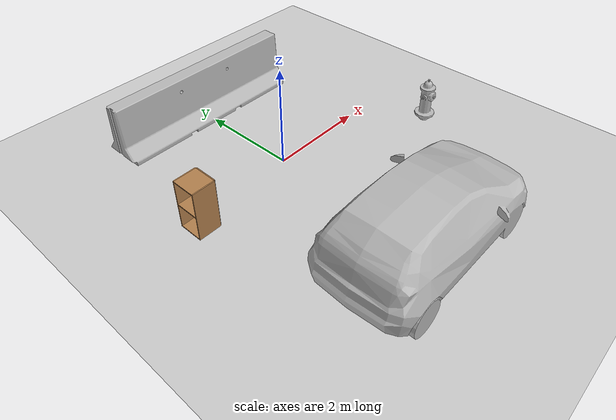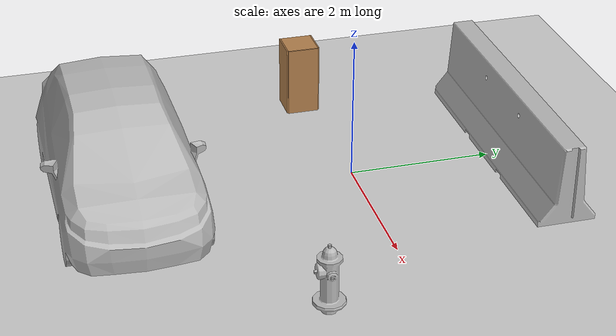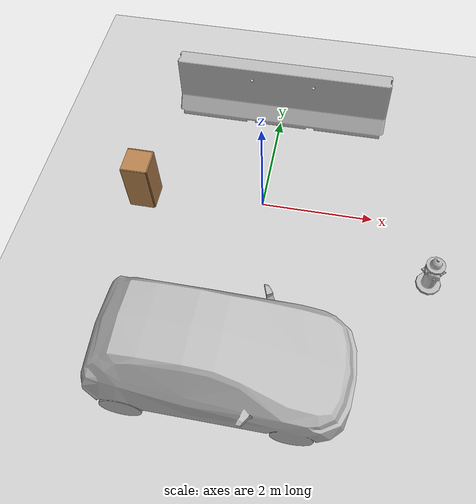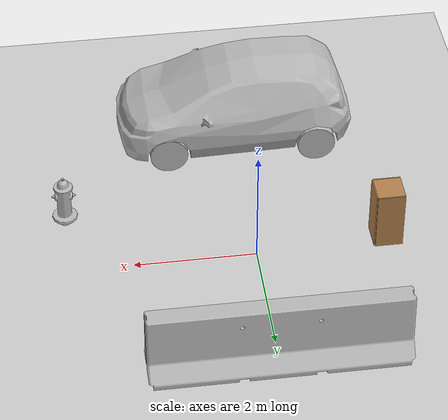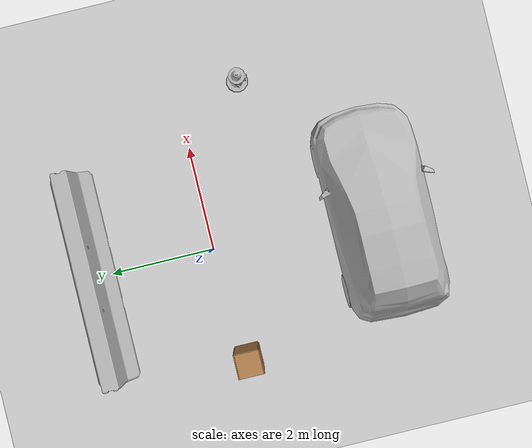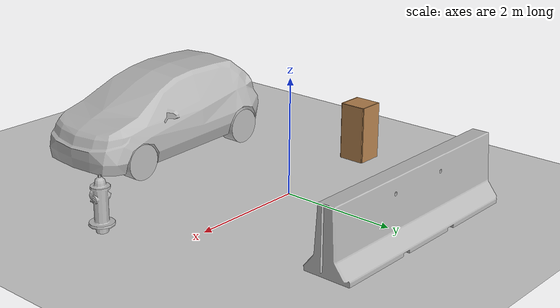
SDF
<sdf version="1.7">
 <world name="default">
  <light name="sun" type="directional">
   <pose>0 0 10 0 -0 0</pose>
   <diffuse>0.8 0.8 0.8 1</diffuse>
   <specular>0.2 0.2 0.2 1</specular>
   <attenuation>
    <range>1000</range>
    <constant>0.9</constant>
    <linear>0.01</linear>
    <quadratic>0.001</quadratic>
   </attenuation>
   <direction>-0.5 0.1 -0.9</direction>
   <spot><inner_angle>0</inner_angle><outer_angle>0</outer_angle><falloff>0</falloff></spot>
  </light>
  <model name="ground_plane">
   <static>1</static>
   <link name="link">
    <collision name="collision">
     <geometry><plane><normal>0 0 1</normal><size>100 100</size></plane></geometry>
     <surface><friction><ode><mu>100</mu><mu2>50</mu2></ode></friction></surface>
    </collision>
    <visual name="visual">
     <cast_shadows>0</cast_shadows>
     <geometry><plane><normal>0 0 1</normal><size>100 100</size></plane></geometry>
     <material>
      <script><uri>file://media/materials/scripts/gazebo.material</uri><name>Gazebo/Grey</name></script>
     </material>
    </visual>
   </link>
  </model>
  <gravity>0 0 -9.8</gravity>
  <magnetic_field>6e-06 2.3e-05 -4.2e-05</magnetic_field>
  <atmosphere type="adiabatic"/>
  <physics type="ode">
   <max_step_size>0.001</max_step_size>
   <real_time_factor>1</real_time_factor>
   <real_time_update_rate>1000</real_time_update_rate>
  </physics>
  <scene><ambient>0.4 0.4 0.4 1</ambient><background>0.7 0.7 0.7 1</background><shadows>1</shadows></scene>
  <audio><device>default</device></audio>
  <spherical_coordinates>
   <surface_model>EARTH_WGS84</surface_model>
   <latitude_deg>0</latitude_deg>
   <longitude_deg>0</longitude_deg>
   <elevation>0</elevation>
   <heading_deg>0</heading_deg>
  </spherical_coordinates>
  <model name="jersey_barrier">
   <static>1</static>
   <link name="link">
    <visual name="visual">
     <geometry><mesh><uri>model://jersey_barrier/meshes/jersey_barrier.dae</uri></mesh></geometry>
    </visual>
    <collision name="upright">
     <pose>0 0 0.5715 0 -0 0</pose>
     <geometry><box><size>4.06542 0.3063 1.143</size></box></geometry>
    </collision>
    <collision name="base">
     <pose>0 0 0.032258 0 -0 0</pose>
     <geometry><box><size>4.06542 0.8107 0.064516</size></box></geometry>
    </collision>
    <collision name="base2">
     <pose>0 0 0.1 0 -0 0</pose>
     <geometry><box><size>4.06542 0.65 0.1</size></box></geometry>
    </collision>
    <collision name="base3">
     <pose>0 0 0.2 0 -0 0</pose>
     <geometry><box><size>4.06542 0.5 0.1</size></box></geometry>
    </collision>
    <collision name="left-angle">
     <pose>0 -0.224 0.2401 0.9 -0 0</pose>
     <geometry><box><size>4.06542 0.5 0.064516</size></box></geometry>
    </collision>
    <collision name="right-angle">
     <pose>0 0.224 0.2401 -0.9 0 0</pose>
     <geometry><box><size>4.06542 0.5 0.064516</size></box></geometry>
    </collision>
   </link>
   <pose>-0.002615 2.3398 0 0 -0 0</pose>
  </model>
  <model name="hatchback">
   <static>1</static>
   <link name="link">
    <collision name="collision">
     <pose>0 0 0 0 -0 1.5708</pose>
     <geometry>
      <mesh><scale>0.0254 0.0254 0.0254</scale><uri>model://hatchback/meshes/hatchback.obj</uri></mesh>
     </geometry>
    </collision>
    <visual name="visual">
     <pose>0 0 0 0 -0 1.5708</pose>
     <geometry>
      <mesh><scale>0.0254 0.0254 0.0254</scale><uri>model://hatchback/meshes/hatchback.obj</uri></mesh>
     </geometry>
    </visual>
   </link>
   <pose>-0.37726 -3.1914 0 0 -0 0</pose>
  </model>
  <model name="fire_hydrant">
   <static>1</static>
   <link name="link">
    <collision name="collision">
     <geometry><mesh><uri>model://fire_hydrant/meshes/fire_hydrant.dae</uri></mesh></geometry>
    </collision>
    <visual name="visual">
     <geometry><mesh><uri>model://fire_hydrant/meshes/fire_hydrant.dae</uri></mesh></geometry>
    </visual>
   </link>
   <pose>3.01148 -1.19645 0 0 -0 0</pose>
  </model>
  <model name="cabinet">
   <static>1</static>
   <link name="cabinet_bottom_plate">
    <inertial>
     <pose>0 0 -1 0 -0 0</pose>
     <inertia><ixx>2.05</ixx><ixy>0</ixy><ixz>0</ixz><iyy>2.05</iyy><iyz>0</iyz><izz>2.05</izz></inertia>
     <mass>25</mass>
    </inertial>
    <collision name="cabinet_bottom_plate_geom">
     <pose>0 0 0.01 0 -0 0</pose>
     <geometry><box><size>0.45 0.45 0.02</size></box></geometry>
    </collision>
    <visual name="cabinet_bottom_plate_geom_visual">
     <pose>0 0 0.01 0 -0 0</pose>
     <geometry><box><size>0.45 0.45 0.02</size></box></geometry>
     <material>
      <script><uri>file://media/materials/scripts/gazebo.material</uri><name>Gazebo/Wood</name></script>
     </material>
    </visual>
    <collision name="cabinet_bottom_plate_geom_cabinet_back_plate">
     <pose>0.235 0 0.51 0 -0 0</pose>
     <geometry><box><size>0.02 0.45 1.02</size></box></geometry>
    </collision>
    <visual name="cabinet_bottom_plate_geom_cabinet_back_plate_visual">
     <pose>0.235 0 0.51 0 -0 0</pose>
     <geometry><box><size>0.02 0.45 1.02</size></box></geometry>
     <material>
      <script><uri>file://media/materials/scripts/gazebo.material</uri><name>Gazebo/Wood</name></script>
     </material>
    </visual>
    <collision name="cabinet_bottom_plate_geom_cabinet_left_plate">
     <pose>0 0.235 0.51 0 -0 0</pose>
     <geometry><box><size>0.45 0.02 1.02</size></box></geometry>
    </collision>
    <visual name="cabinet_bottom_plate_geom_cabinet_left_plate_visual">
     <pose>0 0.235 0.51 0 -0 0</pose>
     <geometry><box><size>0.45 0.02 1.02</size></box></geometry>
     <material>
      <script><uri>file://media/materials/scripts/gazebo.material</uri><name>Gazebo/Wood</name></script>
     </material>
    </visual>
    <collision name="cabinet_bottom_plate_geom_cabinet_middle_plate">
     <pose>0 0 0.51 0 -0 0</pose>
     <geometry><box><size>0.45 0.45 0.02</size></box></geometry>
    </collision>
    <visual name="cabinet_bottom_plate_geom_cabinet_middle_plate_visual">
     <pose>0 0 0.51 0 -0 0</pose>
     <geometry><box><size>0.45 0.45 0.02</size></box></geometry>
     <material>
      <script><uri>file://media/materials/scripts/gazebo.material</uri><name>Gazebo/Wood</name></script>
     </material>
    </visual>
    <collision name="cabinet_bottom_plate_geom_cabinet_right_plate">
     <pose>0 -0.235 0.51 0 -0 0</pose>
     <geometry><box><size>0.45 0.02 1.02</size></box></geometry>
    </collision>
    <visual name="cabinet_bottom_plate_geom_cabinet_right_plate_visual">
     <pose>0 -0.235 0.51 0 -0 0</pose>
     <geometry><box><size>0.45 0.02 1.02</size></box></geometry>
     <material>
      <script><uri>file://media/materials/scripts/gazebo.material</uri><name>Gazebo/Wood</name></script>
     </material>
    </visual>
    <collision name="cabinet_bottom_plate_geom_cabinet_top_plate">
     <pose>0 0 1.01 0 -0 0</pose>
     <geometry><box><size>0.45 0.45 0.02</size></box></geometry>
    </collision>
    <visual name="cabinet_bottom_plate_geom_cabinet_top_plate_visual">
     <pose>0 0 1.01 0 -0 0</pose>
     <geometry><box><size>0.45 0.45 0.02</size></box></geometry>
     <material>
      <script><uri>file://media/materials/scripts/gazebo.material</uri><name>Gazebo/Wood</name></script>
     </material>
    </visual>
   </link>
   <pose>-2.15703 -0.174157 0 0 -0 0</pose>
  </model>
 </world>
</sdf>
